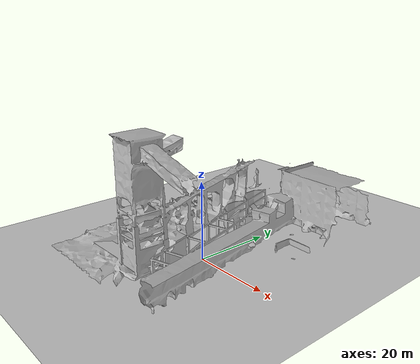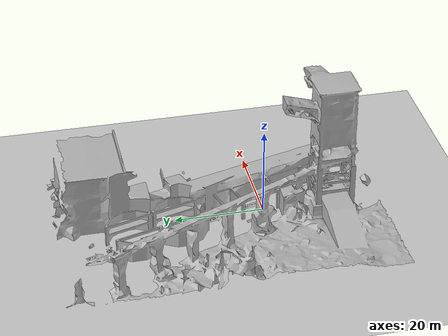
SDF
<sdf version="1.7">
 <world name="default">
  <model name="ground_plane">
   <static>1</static>
   <pose>0 0 1.5059 0 -0 0</pose>
   <link name="link">
    <collision name="collision">
     <pose>0 0 -0.002 0 -0 0</pose>
     <laser_retro>25</laser_retro>
     <geometry><plane><normal>0 0 1</normal><size>100 100</size></plane></geometry>
     <surface><friction><ode><mu>100</mu><mu2>50</mu2></ode></friction></surface>
    </collision>
    <visual name="visual">
     <pose>0 0 -0.003 0 -0 0</pose>
     <cast_shadows>0</cast_shadows>
     <geometry><plane><normal>0 0 1</normal><size>100 100</size></plane></geometry>
     <material>
      <script><uri>file://media/materials/scripts/gazebo.material</uri><name>Gazebo/Grey</name></script>
     </material>
    </visual>
   </link>
  </model>
  <model name="anquanshengchan">
   <link name="link_0">
    <inertial>
     <mass>1</mass>
     <inertia>
      <ixx>0.166667</ixx>
      <ixy>0</ixy>
      <ixz>0</ixz>
      <iyy>0.166667</iyy>
      <iyz>0</iyz>
      <izz>0.166667</izz>
     </inertia>
    </inertial>
    <visual name="visual">
     <geometry>
      <mesh><uri>model://anquanshengchan/meshes/anquanshengchan.dae</uri><scale>1 1 1</scale></mesh>
     </geometry>
    </visual>
    <collision name="collision">
     <laser_retro>7</laser_retro>
     <geometry>
      <mesh><uri>model://anquanshengchan/meshes/anquanshengchan_collision.obj</uri><scale>1 1 1</scale></mesh>
     </geometry>
     <surface>
      <friction>
       <ode><mu>1</mu><mu2>1</mu2><fdir1>0 0 0</fdir1><slip1>0</slip1><slip2>0</slip2></ode>
       <torsional>
        <coefficient>1</coefficient>
        <patch_radius>0</patch_radius>
        <surface_radius>0</surface_radius>
        <use_patch_radius>1</use_patch_radius>
        <ode><slip>0</slip></ode>
       </torsional>
      </friction>
      <bounce><restitution_coefficient>0</restitution_coefficient><threshold>1e+06</threshold></bounce>
      <contact>
       <collide_without_contact>0</collide_without_contact>
       <collide_without_contact_bitmask>1</collide_without_contact_bitmask>
       <collide_bitmask>1</collide_bitmask>
       <ode>
        <soft_cfm>0</soft_cfm>
        <soft_erp>0.2</soft_erp>
        <kp>1e+13</kp>
        <kd>1</kd>
        <max_vel>0.01</max_vel>
        <min_depth>0</min_depth>
       </ode>
       <bullet>
        <split_impulse>1</split_impulse>
        <split_impulse_penetration_threshold>-0.01</split_impulse_penetration_threshold>
        <soft_cfm>0</soft_cfm>
        <soft_erp>0.2</soft_erp>
        <kp>1e+13</kp>
        <kd>1</kd>
       </bullet>
      </contact>
     </surface>
    </collision>
   </link>
   <static>1</static>
   <pose>-3.90613 3.87824 2.16328 0 -0 0</pose>
  </model>
  <model name="grey_wall_clone_1">
   <static>1</static>
   <link name="link">
    <pose>0 0 1.4 0 -0 0</pose>
    <collision name="collision">
     <laser_retro>11</laser_retro>
     <geometry><box><size>7.5 0.2 2.8</size></box></geometry>
    </collision>
    <visual name="visual">
     <cast_shadows>0</cast_shadows>
     <geometry><box><size>7.5 0.2 2.8</size></box></geometry>
     <material>
      <script>
       <uri>model://grey_wall/materials/scripts</uri>
       <uri>model://grey_wall/materials/textures</uri>
       <name>vrc/grey_wall</name>
      </script>
     </material>
    </visual>
   </link>
   <pose>-6.42318 0.495857 1.24555 1.53699 0 1.97849</pose>
  </model>
 </world>
</sdf>
